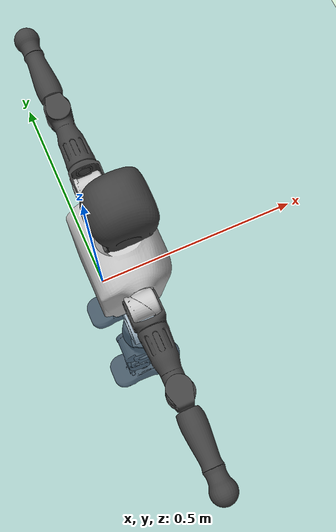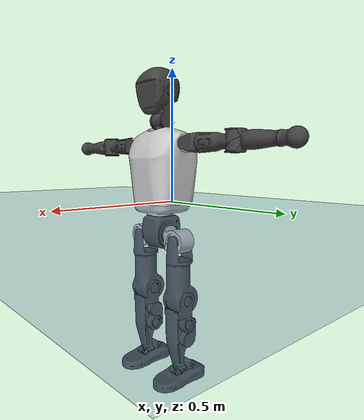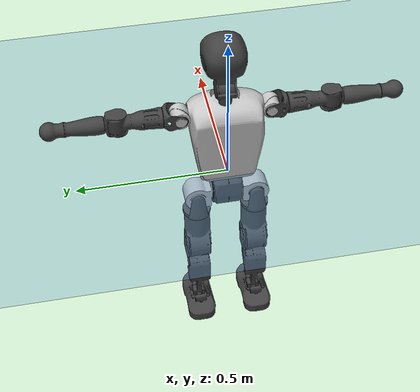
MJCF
<mujoco model="T1">
  <compiler angle="radian" assetdir="assets" balanceinertia="true" inertiafromgeom="false"/>

  <option timestep="0.005" density="1.2" viscosity="2e-05"/>

  <size nkey="1"/>

  <visual>
    <quality shadowsize="8192"/>
    <map shadowclip="0.5"/>
  </visual>

  <default>
    <default class="/">
      <joint armature="0.01" damping="0.01" frictionloss="0.1"/>
      <geom contype="0" conaffinity="0" group="1" solref="-1000 -80"/>
      <site size="0.01 0.005 0.005" group="5"/>
      <general forcelimited="true" biastype="affine" gainprm="25" biasprm="0 -25 -0.6"/>
      <default class="t1">
        <geom rgba="0.25 0.25 0.25 1"/>
        <default class="visual">
          <geom type="mesh" group="2"/>
        </default>
        <default class="collision">
          <geom group="3"/>
        </default>
        <default class="foot">
          <geom size="0.1115 0.05 0.015" type="box" condim="6" group="4" priority="1" solimp="0.015 1 0.015"/>
        </default>
        <default class="reward_collision_sphere">
          <geom group="5" rgba="1 0 0 1"/>
        </default>
      </default>
    </default>
  </default>

  <asset>
    <texture type="skybox" colorspace="auto" name="//unnamed_texture_0" builtin="gradient" rgb1="0.95 0.95 0.95" rgb2="0.95 0.95 0.95" width="100" height="600"/>
    <texture type="2d" colorspace="auto" name="texplane" builtin="checker" rgb1="0.345 0.575 0.748" rgb2="0.345 0.575 0.748" markrgb="1 1 1" width="512" height="512"/>
    <material name="MatPlane" class="/" texture="texplane" texuniform="true" texrepeat="2 2" specular="0.9"/>
    <mesh name="Trunk" class="/" file="Trunk.stl"/>
    <mesh name="H1" class="/" file="H1.stl"/>
    <mesh name="H2" class="/" file="H2.stl"/>
    <mesh name="AL1" class="/" file="AL1.stl"/>
    <mesh name="AL2" class="/" file="AL2.stl"/>
    <mesh name="AL3" class="/" file="AL3.stl"/>
    <mesh name="left_hand_link" class="/" file="left_hand_link.stl"/>
    <mesh name="AR1" class="/" file="AR1.stl"/>
    <mesh name="AR2" class="/" file="AR2.stl"/>
    <mesh name="AR3" class="/" file="AR3.stl"/>
    <mesh name="right_hand_link" class="/" file="right_hand_link.stl"/>
    <mesh name="Waist" class="/" file="Waist.stl"/>
    <mesh name="Hip_Pitch_Left" class="/" file="Hip_Pitch_Left.stl"/>
    <mesh name="Hip_Roll_Left" class="/" file="Hip_Roll_Left.stl"/>
    <mesh name="Hip_Yaw_Left" class="/" file="Hip_Yaw_Left.stl"/>
    <mesh name="Shank_Left" class="/" file="Shank_Left.stl"/>
    <mesh name="Ankle_Cross_Left" class="/" file="Ankle_Cross_Left.stl"/>
    <mesh name="left_foot_link" class="/" file="left_foot_link.stl"/>
    <mesh name="Hip_Pitch_Right" class="/" file="Hip_Pitch_Right.stl"/>
    <mesh name="Hip_Roll_Right" class="/" file="Hip_Roll_Right.stl"/>
    <mesh name="Hip_Yaw_Right" class="/" file="Hip_Yaw_Right.stl"/>
    <mesh name="Shank_Right" class="/" file="Shank_Right.stl"/>
    <mesh name="Ankle_Cross_Right" class="/" file="Ankle_Cross_Right.stl"/>
    <mesh name="right_foot_link" class="/" file="right_foot_link.stl"/>
  </asset>

  <worldbody>
    <geom name="floor" class="/" size="100 100 0.125" type="plane" group="0" material="MatPlane"/>
    <light name="toplight_shadow" class="/" pos="0 0 5" dir="0.0990148 0.0990148 -0.990148" type="directional" ambient="0.04 0.04 0.04" diffuse="0.55 0.55 0.55" specular="0.12 0.12 0.12"/>
    <light name="toplight_fill" class="/" pos="0 0 5" dir="0.0990148 0.0990148 -0.990148" type="directional" castshadow="false" ambient="0.04 0.04 0.04" diffuse="0.3 0.3 0.3" specular="0.08 0.08 0.08"/>
    <body name="trunk" childclass="t1" pos="-0.000142765 -0.000526771 -0.000530368" quat="1 0.000158799 9.92861e-05 -0.000332211">
      <inertial pos="0.0468743 -0.000898359 0.104122" quat="0.999957 -0.00065488 -0.00924715 8.53287e-05" mass="9.56473" diaginertia="0.039255 0.0588343 0.0550839"/>
      <joint name="//unnamed_joint_0" type="free" armature="0" damping="0" frictionloss="0"/>
      <geom name="//unnamed_geom_1" class="visual" rgba="0.76 0.76 0.76 1" mesh="Trunk"/>
      <geom name="//unnamed_geom_2" class="collision" size="0.0697229 0.0929638 0.139446" pos="0.0506454 0 0.11968" type="box"/>
      <geom name="//unnamed_geom_3" class="reward_collision_sphere" size="0.106908" pos="0.0506454 0 0.0997336"/>
      <geom name="//unnamed_geom_4" class="reward_collision_sphere" size="0.0139446" pos="0.0506454 0.0805365 0"/>
      <geom name="//unnamed_geom_5" class="reward_collision_sphere" size="0.0139446" pos="0.0506454 -0.0805365 0"/>
      <geom name="//unnamed_geom_6" class="reward_collision_sphere" size="0.0139446" pos="0.0506454 0.101381 0.179521"/>
      <geom name="//unnamed_geom_7" class="reward_collision_sphere" size="0.0139446" pos="0.0506454 -0.101381 0.179521"/>
      <site name="imu" pos="-0.00615651 0.00691059 -0.00570119" size="0.00929638"/>
      <camera name="track" pos="0 -1.89498 0" quat="0.707107 0.707107 0 0" mode="trackcom"/>
      <camera name="ego_camera" pos="0.102979 0 0.418881" quat="-0.5 -0.5 0.5 0.5"/>
      <body name="H1" pos="0.0521962 -0.000395845 0.242755" quat="1 0.000155514 -0.000551369 -4.01422e-06">
        <inertial pos="-0.00100481 -0.00141041 0.0566565" quat="0.763901 -0.0134023 0.00431438 0.645179" mass="0.366464" diaginertia="0.000104291 0.000171042 0.000148827"/>
        <joint name="AAHead_yaw" pos="0 0 0" axis="-0.00393715 0.001129 0.999992" stiffness="0.00231803" range="-1.56132 1.57734" armature="0.00991067" damping="0.00345944" frictionloss="0.0931246"/>
        <geom name="//unnamed_geom_8" class="visual" mesh="H1"/>
        <body name="H2" pos="0.00113043 0.000514486 0.0616238" quat="1 8.37084e-05 0.00038841 -0.000321966">
          <inertial pos="0.00627112 0.00119901 0.0984707" quat="0.988715 0.105781 -0.0726255 -0.0773167" mass="0.508842" diaginertia="0.000871036 0.00147795 0.00168633"/>
          <joint name="Head_pitch" pos="0 0 0" axis="0.000183318 -0.999999 -0.00120062" range="-1.23023 0.365715" armature="0.00876445" damping="0.00913341" frictionloss="0.0906026"/>
          <geom name="//unnamed_geom_9" class="visual" mesh="H2"/>
          <geom name="//unnamed_geom_10" class="collision" size="0.0743711" pos="0.00844089 0 0.109707"/>
          <geom name="//unnamed_geom_11" class="reward_collision_sphere" size="0.0836674" pos="0.0168818 0 0.0997336"/>
        </body>
      </body>
      <body name="AL1" pos="0.0488477 0.100811 0.217885" quat="1 -2.87419e-05 0.000429479 -1.91301e-05">
        <inertial pos="-0.000918593 0.042595 8.16731e-05" quat="0.505196 0.493701 -0.504173 0.496835" mass="0.426413" diaginertia="0.000580692 0.000997905 0.000292075"/>
        <joint name="Left_Shoulder_Pitch" pos="0 0 0" axis="0.000454591 0.999991 0.00410474" range="-3.32766 1.21374" armature="0.00951972" damping="0.00665257" frictionloss="0.0961621"/>
        <geom name="//unnamed_geom_12" class="visual" rgba="0.76 0.76 0.76 1" mesh="AL1"/>
        <body name="AL2" pos="0.00172015 0.0442599 9.14717e-05" quat="1 -2.66901e-05 -4.58154e-05 -2.66829e-05">
          <inertial pos="0.00369555 0.035805 0.000384658" quat="0.487163 0.511931 -0.488109 0.512199" mass="0.128784" diaginertia="0.000170292 0.000259257 0.000171122"/>
          <joint name="Left_Shoulder_Roll" pos="0 0 0" axis="-0.999995 -0.00321044 0.000827158" range="-1.54994 1.76298" armature="0.00878086" damping="0.00804524" frictionloss="0.0933866"/>
          <geom name="//unnamed_geom_13" class="visual" mesh="AL2"/>
          <body name="AL3" pos="0.000657111 0.0571917 -0.000202985" quat="1 -0.000133015 -0.000149881 0.000105389">
            <inertial pos="-0.000840264 0.0809342 -0.000282295" quat="0.703728 0.710463 0.00243364 -0.00187073" mass="0.820049" diaginertia="0.0055788 0.00976674 0.000605473"/>
            <joint name="Left_Elbow_Pitch" pos="0 0 0" axis="-0.00787685 -0.999969 0.000144803" range="-2.24767 2.27095" armature="0.00849334" damping="0.00201119" frictionloss="0.0944861"/>
            <geom name="//unnamed_geom_14" class="visual" mesh="AL3"/>
            <geom name="//unnamed_geom_15" class="collision" size="0.0278891 0.0697229" pos="0 0.0473744 0" quat="0.707105 0.707108 0 0" type="cylinder"/>
            <geom name="//unnamed_geom_16" class="reward_collision_sphere" size="0.033467"/>
            <body name="left_hand_link" pos="0.000868452 0.139561 0.000321104" quat="1 -0.000130845 0.000103808 -0.000480787">
              <inertial pos="4.81569e-05 0.104379 -0.000518721" quat="0.707892 0.70632 -0.000215752 9.20603e-05" mass="0.260318" diaginertia="0.00350767 0.00625232 0.000208513"/>
              <joint name="Left_Elbow_Yaw" pos="0 0 0" axis="0.000405861 0.00697088 0.999976" stiffness="0.00195613" range="-2.425 0.00054048" armature="0.0098654" damping="0.0128909" frictionloss="0.0968584"/>
              <geom name="//unnamed_geom_17" class="visual" mesh="left_hand_link"/>
              <geom name="//unnamed_geom_18" class="collision" size="0.0278891 0.0813433" pos="0 0.123174 0" quat="0.707105 0.707108 0 0" type="cylinder"/>
              <geom name="//unnamed_geom_19" class="reward_collision_sphere" size="0.0464819"/>
              <geom name="//unnamed_geom_20" class="reward_collision_sphere" size="0.0325373" pos="0 0.104224 0"/>
              <geom name="//unnamed_geom_21" class="reward_collision_sphere" size="0.0325373" pos="0 0.20371 0"/>
            </body>
          </body>
        </body>
      </body>
      <body name="AR1" pos="0.0476733 -0.100728 0.21788" quat="1 -0.000171272 0.000126891 0.000136618">
        <inertial pos="-0.00213634 -0.0434414 -0.000395405" quat="0.50897 0.494685 -0.506524 0.489561" mass="0.419179" diaginertia="0.00059071 0.000995858 0.000292313"/>
        <joint name="Right_Shoulder_Pitch" pos="0 0 0" axis="-0.000358728 -0.999997 -0.00228993" stiffness="0.000891011" range="-1.22602 3.30742" armature="0.00919382" damping="0.00487821" frictionloss="0.0946281"/>
        <geom name="//unnamed_geom_22" class="visual" rgba="0.76 0.76 0.76 1" mesh="AR1"/>
        <body name="AR2" pos="-0.000481721 -0.0432124 8.96493e-05" quat="1 -0.000126129 1.49687e-05 0.000321436">
          <inertial pos="0.00243352 -0.0354093 -0.000492023" quat="0.511342 0.488408 -0.51166 0.488048" mass="0.128416" diaginertia="0.000172244 0.000266393 0.000172463"/>
          <joint name="Right_Shoulder_Roll" pos="0 0 0" axis="-0.999993 0.00026284 0.00376719" stiffness="0.00302327" range="-1.75816 1.59961" armature="0.00933651" damping="0.00474196" frictionloss="0.0953235"/>
          <geom name="//unnamed_geom_23" class="visual" mesh="AR2"/>
          <body name="AR3" pos="-0.000811234 -0.0578966 0.000140396" quat="1 -5.58389e-05 -5.48655e-05 -7.68801e-06">
            <inertial pos="-0.000449857 -0.0820836 0.000379316" quat="0.708051 0.70616 0.000348544 -0.0010856" mass="0.821955" diaginertia="0.00546211 0.0098268 0.000614587"/>
            <joint name="Right_Elbow_Pitch" pos="0 0 0" axis="-0.00035683 0.99999 -0.00441245" range="-2.28679 2.27238" armature="0.00937804" damping="0.00880961" frictionloss="0.0932246"/>
            <geom name="//unnamed_geom_24" class="visual" mesh="AR3"/>
            <geom name="//unnamed_geom_25" class="collision" size="0.0278891 0.0697229" pos="0 -0.0473744 0" quat="0.707105 0.707108 0 0" type="cylinder"/>
            <geom name="//unnamed_geom_26" class="reward_collision_sphere" size="0.033467"/>
            <body name="right_hand_link" pos="-0.000917753 -0.139349 -0.000652572" quat="1 -1.5958e-05 0.000303066 0.000235614">
              <inertial pos="-3.94501e-05 -0.1041 0.00106558" quat="0.706398 0.707812 0.0012434 0.00137953" mass="0.265566" diaginertia="0.00350092 0.00621511 0.000213398"/>
              <joint name="Right_Elbow_Yaw" pos="0 0 0" axis="-0.00356288 0.00171289 0.999992" range="0.0097125 2.43276" armature="0.00943997" damping="0.0116553" frictionloss="0.0905889"/>
              <geom name="//unnamed_geom_27" class="visual" mesh="right_hand_link"/>
              <geom name="//unnamed_geom_28" class="collision" size="0.0278891 0.0813433" pos="0 -0.123174 0" quat="0.707105 0.707108 0 0" type="cylinder"/>
              <geom name="//unnamed_geom_29" class="reward_collision_sphere" size="0.0464819"/>
              <geom name="//unnamed_geom_30" class="reward_collision_sphere" size="0.0325373" pos="0 -0.104224 0"/>
              <geom name="//unnamed_geom_31" class="reward_collision_sphere" size="0.0325373" pos="0 -0.20371 0"/>
            </body>
          </body>
        </body>
      </body>
      <body name="Waist" pos="0.0535788 -0.00195734 -0.115155" quat="1 0.000156398 0.000110532 1.47037e-05">
        <inertial pos="-3.88668e-05 -0.00106976 0.00728791" quat="0.983337 -0.000303224 -0.181777 0.00211254" mass="2.0998" diaginertia="0.00227369 0.00408375 0.00465961"/>
        <joint name="Waist" pos="0 0 0" axis="-0.00300514 0.0059864 0.999978" range="-1.58306 1.58073" armature="0.00974678" damping="0.0192581" frictionloss="0.0932928"/>
        <geom name="//unnamed_geom_32" class="visual" mesh="Waist"/>
        <body name="Hip_Pitch_Left" pos="-0.000601715 0.100343 -0.000493862" quat="0.999999 0.00100886 0.000575005 -0.000139517">
          <inertial pos="0.00104322 -0.00598382 -0.0180432" quat="0.974872 0.222223 0.0154223 0.00169629" mass="0.795967" diaginertia="0.000760976 0.00109543 0.00123447"/>
          <joint name="Left_Hip_Pitch" pos="0 0 0" axis="-0.00318928 0.999989 -0.0034789" stiffness="0.000943383" range="-1.79431 1.56553" armature="0.00930456" damping="0.00753061" frictionloss="0.0996478"/>
          <geom name="//unnamed_geom_33" class="visual" rgba="0.76 0.76 0.76 1" mesh="Hip_Pitch_Left"/>
          <body name="Hip_Roll_Left" pos="0.00183343 0.00100485 -0.0220383" quat="1 0.000706382 -0.000199588 5.79333e-05">
            <inertial pos="0.000670573 0.00109081 -0.0547479" quat="0.707895 -0.00568966 -0.00443555 0.706281" mass="0.310818" diaginertia="0.000740777 0.00115736 0.00050745"/>
            <joint name="Left_Hip_Roll" pos="0 0 0" axis="-1 -0.000460627 -0.000104833" stiffness="0.000414039" range="-1.56737 0.195558" armature="0.00912886" damping="0.0117592" frictionloss="0.0929591"/>
            <geom name="//unnamed_geom_34" class="visual" mesh="Hip_Roll_Left"/>
            <geom name="//unnamed_geom_35" class="reward_collision_sphere" size="0.0511301"/>
            <body name="Hip_Yaw_Left" pos="0.00211239 -0.00144535 -0.0829485" quat="1 2.76334e-06 -4.12175e-06 -1.17375e-06">
              <inertial pos="-0.00620995 0.00128 -0.0880233" quat="0.696556 -0.0339137 -0.0300552 0.71607" mass="1.7193" diaginertia="0.0108959 0.0190913 0.00254312"/>
              <joint name="Left_Hip_Yaw" pos="0 0 0" axis="-0.00292279 0.00137901 -0.999995" range="-1.00653 1.01258" armature="0.00930719" damping="0.0142095" frictionloss="0.0903011"/>
              <geom name="//unnamed_geom_36" class="visual" mesh="Hip_Yaw_Left"/>
              <geom name="//unnamed_geom_37" class="collision" size="0.0464819 0.0743711" type="cylinder"/>
              <body name="Shank_Left" pos="-0.00978341 0.000454976 -0.133252" quat="1 -5.21711e-06 4.35012e-05 3.89594e-06">
                <inertial pos="-0.00494239 0.0013731 -0.124965" quat="0.997633 -0.00264198 -0.0223805 0.0649652" mass="1.38156" diaginertia="0.0148569 0.0260304 0.00182944"/>
                <joint name="Left_Knee_Pitch" pos="0 0 0" axis="-0.00210482 0.999998 0.000300907" range="0.00377831 2.32937" armature="0.00924676" damping="0.0122488" frictionloss="0.0931882"/>
                <geom name="//unnamed_geom_38" class="visual" mesh="Shank_Left"/>
                <geom name="//unnamed_geom_39" class="collision" size="0.0464819 0.0697229" pos="0 0 -0.11968" type="cylinder"/>
                <geom name="//unnamed_geom_40" class="reward_collision_sphere" size="0.0604265"/>
                <body name="Ankle_Cross_Left" pos="-0.00109029 -6.236e-05 -0.279724" quat="1 0.000228558 0.000320393 -0.00019496">
                  <inertial pos="-0.00342119 6.42721e-06 -0.00851357" quat="0.442996 0.551204 0.551241 0.442789" mass="0.0591431" diaginertia="1.24203e-05 1.95869e-05 1.11624e-05"/>
                  <joint name="Left_Ankle_Pitch" pos="0 0 0" axis="0.000946179 0.999999 -0.000656873" range="-0.898608 0.374497" armature="0.00892549" damping="0" frictionloss="0.0893637"/>
                  <geom name="//unnamed_geom_41" class="visual" mesh="Ankle_Cross_Left"/>
                  <body name="left_foot_link" pos="0.000107851 0.000834501 -0.0130532" quat="1 0.000131777 -0.000545017 0.000506356">
                    <inertial pos="0.000211418 2.13693e-05 -0.00877629" quat="8.74158e-05 0.620485 0.000139516 0.784218" mass="0.565073" diaginertia="0.00119811 0.00185776 0.00225778"/>
                    <joint name="Left_Ankle_Roll" pos="0 0 0" axis="-0.999998 0.00124853 -0.00169674" range="-0.444677 0.469992" armature="0.00937383" damping="0.00887869" frictionloss="0.10189"/>
                    <geom name="//unnamed_geom_42" class="visual" mesh="left_foot_link"/>
                    <geom name="left_foot" class="foot" size="0.104323 0.0450636 0.0151991" pos="0.00844089 0 -0.01496"/>
                    <geom name="//unnamed_geom_44" class="reward_collision_sphere" size="0.0483412" pos="0.00844089 0 -0.01496"/>
                    <geom name="//unnamed_geom_45" class="reward_collision_sphere" size="0.0278891" pos="0.0801885 -0.0217922 -0.01496"/>
                    <geom name="//unnamed_geom_46" class="reward_collision_sphere" size="0.0278891" pos="-0.0590863 -0.0217922 -0.01496"/>
                    <site name="left_foot" class="foot" pos="0.00844089 0 -0.01496" size="0.00929638"/>
                  </body>
                </body>
              </body>
            </body>
          </body>
        </body>
        <body name="Hip_Pitch_Right" pos="-0.000211245 -0.100614 0.000191373" quat="1 5.21875e-05 4.98195e-06 -6.55621e-05">
          <inertial pos="0.00125587 0.00731216 -0.0169013" quat="0.974184 -0.225497 0.00836167 -0.00678255" mass="0.812329" diaginertia="0.000758598 0.00108139 0.00121786"/>
          <joint name="Right_Hip_Pitch" pos="0 0 0" axis="0.000270366 -1 -0.000736719" stiffness="0.000167856" range="-1.5726 1.81653" armature="0.00904362" damping="0.00686766" frictionloss="0.093397"/>
          <geom name="//unnamed_geom_47" class="visual" rgba="0.76 0.76 0.76 1" mesh="Hip_Pitch_Right"/>
          <body name="Hip_Roll_Right" pos="-0.000277164 -0.000320834 -0.0209023" quat="1 -4.82572e-05 -1.26787e-05 3.38624e-06">
            <inertial pos="0.000975192 -0.00110353 -0.0535472" quat="0.707037 -0.00663515 -0.0060387 0.70712" mass="0.308979" diaginertia="0.00074472 0.00115747 0.000503879"/>
            <joint name="Right_Hip_Roll" pos="0 0 0" axis="-0.999998 0.00139255 0.00140278" range="-0.210004 1.56369" armature="0.00972697" damping="0.00595736" frictionloss="0.0938508"/>
            <geom name="//unnamed_geom_48" class="visual" mesh="Hip_Roll_Right"/>
            <geom name="//unnamed_geom_49" class="reward_collision_sphere" size="0.0511301"/>
            <body name="Hip_Yaw_Right" pos="-0.000289515 0.00161896 -0.0820661" quat="1 -7.25128e-06 -3.76282e-05 1.02149e-05">
              <inertial pos="-0.00547689 -3.57305e-05 -0.0907" quat="0.714363 -0.0304932 -0.0338943 0.698289" mass="1.76033" diaginertia="0.01104 0.0195354 0.00258538"/>
              <joint name="Right_Hip_Yaw" pos="0 0 0" axis="0.000789757 0.0037795 -0.999993" range="-0.991606 1.02004" armature="0.00940489" damping="0.0130463" frictionloss="0.0929683"/>
              <geom name="//unnamed_geom_50" class="visual" mesh="Hip_Yaw_Right"/>
              <geom name="//unnamed_geom_51" class="collision" size="0.0464819 0.0743711" type="cylinder"/>
              <body name="Shank_Right" pos="-0.0122636 -0.000439216 -0.134229" quat="1 4.41928e-05 -0.000128481 -2.91855e-05">
                <inertial pos="-0.00340651 -0.000425023 -0.121347" quat="0.999284 -0.00208187 -0.0238484 -0.0293051" mass="1.43816" diaginertia="0.0150148 0.0267781 0.00193461"/>
                <joint name="Right_Knee_Pitch" pos="0 0 0" axis="0.00876667 -0.999961 0.00114225" range="-2.33536 0.00633419" armature="0.00899226" damping="0.00426562" frictionloss="0.0932546"/>
                <geom name="//unnamed_geom_52" class="visual" mesh="Shank_Right"/>
                <geom name="//unnamed_geom_53" class="collision" size="0.0464819 0.0697229" pos="0 0 -0.11968" type="cylinder"/>
                <geom name="//unnamed_geom_54" class="reward_collision_sphere" size="0.0604265"/>
                <body name="Ankle_Cross_Right" pos="0.00153489 -0.00224807 -0.27984" quat="1 0.000513754 0.000442419 0.000129701">
                  <inertial pos="-0.00325389 0.000169299 -0.00849396" quat="0.442559 0.550066 0.551815 0.443925" mass="0.0584764" diaginertia="1.23036e-05 1.95753e-05 1.13034e-05"/>
                  <joint name="Right_Ankle_Pitch" pos="0 0 0" axis="0.00119765 -0.999994 -0.00322717" range="-0.330671 0.89811" armature="0.00925594" damping="0.00808116" frictionloss="0.0934003"/>
                  <geom name="//unnamed_geom_55" class="visual" mesh="Ankle_Cross_Right"/>
                  <body name="right_foot_link" pos="2.69846e-05 -0.000890695 -0.0114484" quat="1 -5.501e-05 7.18675e-05 -1.31219e-05">
                    <inertial pos="-1.81369e-05 -0.000490005 -0.00906458" quat="-0.00246874 0.621246 0.000113234 0.783612" mass="0.550429" diaginertia="0.00113665 0.00183066 0.00217608"/>
                    <joint name="Right_Ankle_Roll" pos="0 0 0" axis="-0.999999 0.000182012 -0.00162809" range="-0.456081 0.458726" armature="0.00904132" damping="0.00935315" frictionloss="0.0932557"/>
                    <geom name="//unnamed_geom_56" class="visual" mesh="right_foot_link"/>
                    <geom name="right_foot" class="foot" size="0.0996184 0.0446493 0.0139284" pos="0.00844089 0 -0.01496"/>
                    <geom name="//unnamed_geom_58" class="reward_collision_sphere" size="0.0371855"/>
                    <geom name="//unnamed_geom_59" class="reward_collision_sphere" size="0.0278891" pos="0.00844089 0 -0.01496"/>
                    <geom name="//unnamed_geom_60" class="reward_collision_sphere" size="0.0278891" pos="0.0801885 0.0217922 -0.01496"/>
                    <geom name="//unnamed_geom_61" class="reward_collision_sphere" size="0.0278891" pos="-0.0590863 0.0217922 -0.01496"/>
                    <site name="right_foot" class="foot" pos="0.00844089 0 -0.01496" size="0.00929638"/>
                  </body>
                </body>
              </body>
            </body>
          </body>
        </body>
      </body>
    </body>
  </worldbody>

  <contact>
    <pair class="/" geom1="floor" geom2="left_foot" name="//unnamed_contact_0"/>
    <pair class="/" geom1="floor" geom2="right_foot" name="//unnamed_contact_1"/>
  </contact>

  <actuator>
    <general name="AAHead_yaw" class="/" joint="AAHead_yaw" forcerange="-6.62918 6.62918" gainprm="22.3896" biasprm="0 -22.3896 -0.561372"/>
    <general name="Head_pitch" class="/" joint="Head_pitch" forcerange="-6.49217 6.49217" gainprm="22.3896" biasprm="0 -22.3896 -0.561372"/>
    <general name="Left_Shoulder_Pitch" class="/" joint="Left_Shoulder_Pitch" forcerange="-16.9316 16.9316" gainprm="22.3896" biasprm="0 -22.3896 -0.561372"/>
    <general name="Left_Shoulder_Roll" class="/" joint="Left_Shoulder_Roll" forcerange="-17.2113 17.2113" gainprm="22.3896" biasprm="0 -22.3896 -0.561372"/>
    <general name="Left_Elbow_Pitch" class="/" joint="Left_Elbow_Pitch" forcerange="-15.8825 15.8825" gainprm="22.3896" biasprm="0 -22.3896 -0.561372"/>
    <general name="Left_Elbow_Yaw" class="/" joint="Left_Elbow_Yaw" forcerange="-17.3829 17.3829" gainprm="22.3896" biasprm="0 -22.3896 -0.561372"/>
    <general name="Right_Shoulder_Pitch" class="/" joint="Right_Shoulder_Pitch" forcerange="-17.5244 17.5244" gainprm="22.3896" biasprm="0 -22.3896 -0.561372"/>
    <general name="Right_Shoulder_Roll" class="/" joint="Right_Shoulder_Roll" forcerange="-17.3152 17.3152" gainprm="22.3896" biasprm="0 -22.3896 -0.561372"/>
    <general name="Right_Elbow_Pitch" class="/" joint="Right_Elbow_Pitch" forcerange="-16.8179 16.8179" gainprm="22.3896" biasprm="0 -22.3896 -0.561372"/>
    <general name="Right_Elbow_Yaw" class="/" joint="Right_Elbow_Yaw" forcerange="-16.7837 16.7837" gainprm="22.3896" biasprm="0 -22.3896 -0.561372"/>
    <general name="Waist" class="/" joint="Waist" forcerange="-28.2304 28.2304" gainprm="22.3896" biasprm="0 -22.3896 -0.561372"/>
    <general name="Left_Hip_Pitch" class="/" joint="Left_Hip_Pitch" forcerange="-43.1267 43.1267" gainprm="22.3896" biasprm="0 -22.3896 -0.561372"/>
    <general name="Left_Hip_Roll" class="/" joint="Left_Hip_Roll" forcerange="-28.9564 28.9564" gainprm="22.3896" biasprm="0 -22.3896 -0.561372"/>
    <general name="Left_Hip_Yaw" class="/" joint="Left_Hip_Yaw" forcerange="-26.3981 26.3981" gainprm="22.3896" biasprm="0 -22.3896 -0.561372"/>
    <general name="Left_Knee_Pitch" class="/" joint="Left_Knee_Pitch" forcerange="-52.3335 52.3335" gainprm="22.3896" biasprm="0 -22.3896 -0.561372"/>
    <general name="Left_Ankle_Pitch" class="/" joint="Left_Ankle_Pitch" forcerange="-18.5971 18.5971" gainprm="22.3896" biasprm="0 -22.3896 -0.561372"/>
    <general name="Left_Ankle_Roll" class="/" joint="Left_Ankle_Roll" forcerange="-13.9124 13.9124" gainprm="22.3896" biasprm="0 -22.3896 -0.561372"/>
    <general name="Right_Hip_Pitch" class="/" joint="Right_Hip_Pitch" forcerange="-41.0155 41.0155" gainprm="22.3896" biasprm="0 -22.3896 -0.561372"/>
    <general name="Right_Hip_Roll" class="/" joint="Right_Hip_Roll" forcerange="-27.7474 27.7474" gainprm="22.3896" biasprm="0 -22.3896 -0.561372"/>
    <general name="Right_Hip_Yaw" class="/" joint="Right_Hip_Yaw" forcerange="-26.9566 26.9566" gainprm="22.3896" biasprm="0 -22.3896 -0.561372"/>
    <general name="Right_Knee_Pitch" class="/" joint="Right_Knee_Pitch" forcerange="-56.0037 56.0037" gainprm="22.3896" biasprm="0 -22.3896 -0.561372"/>
    <general name="Right_Ankle_Pitch" class="/" joint="Right_Ankle_Pitch" forcerange="-18.2208 18.2208" gainprm="22.3896" biasprm="0 -22.3896 -0.561372"/>
    <general name="Right_Ankle_Roll" class="/" joint="Right_Ankle_Roll" forcerange="-13.9681 13.9681" gainprm="22.3896" biasprm="0 -22.3896 -0.561372"/>
  </actuator>

  <sensor>
    <gyro site="imu" name="imu_angular_velocity"/>
    <velocimeter site="imu" name="imu_linear_velocity"/>
    <framelinvel objtype="site" objname="left_foot" name="left_foot_global_linear_velocity"/>
    <framelinvel objtype="site" objname="right_foot" name="right_foot_global_linear_velocity"/>
  </sensor>

  <keyframe>
    <key name="home" qpos="0 0 0.6385 1 0 0 0 0 0 0 1.4 0 -0.4 0 -1.4 0 0.4 0 -0.4 0 0 0.8 -0.4 0 0.4 0 0 -0.8 0.4 0"/>
  </keyframe>
</mujoco>
